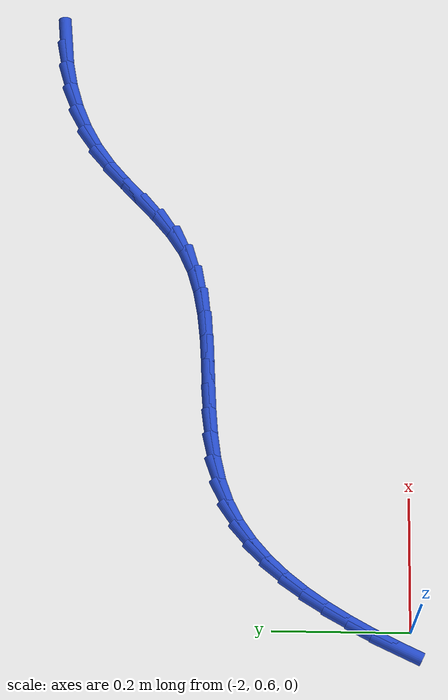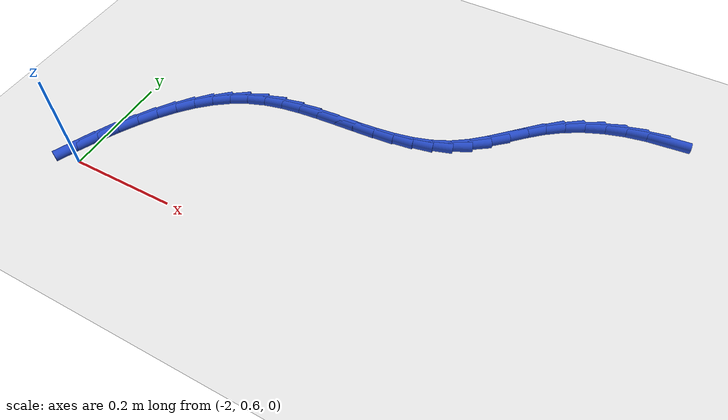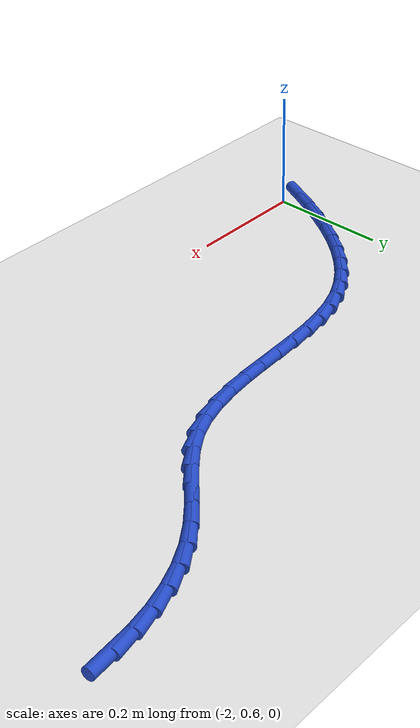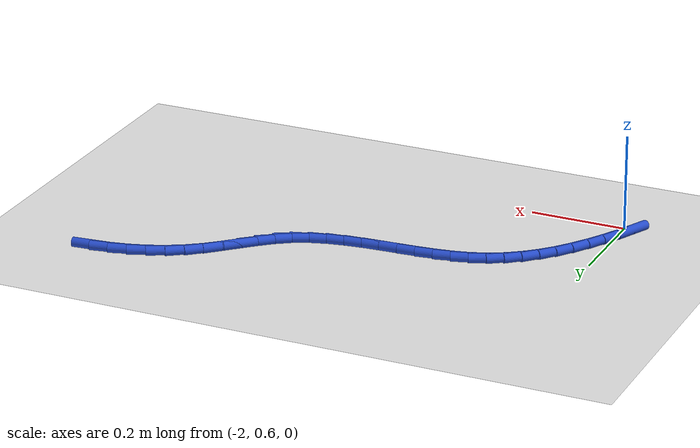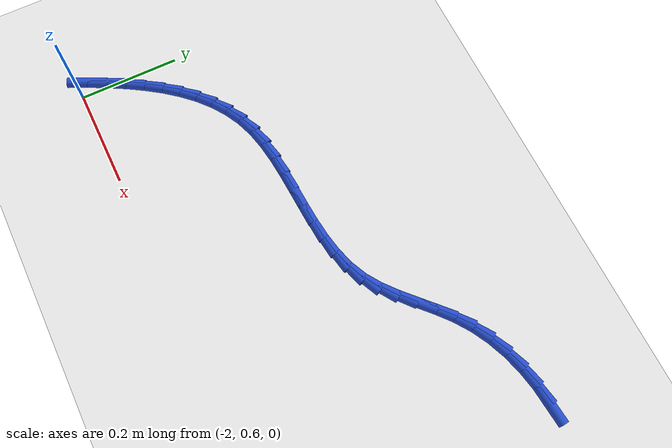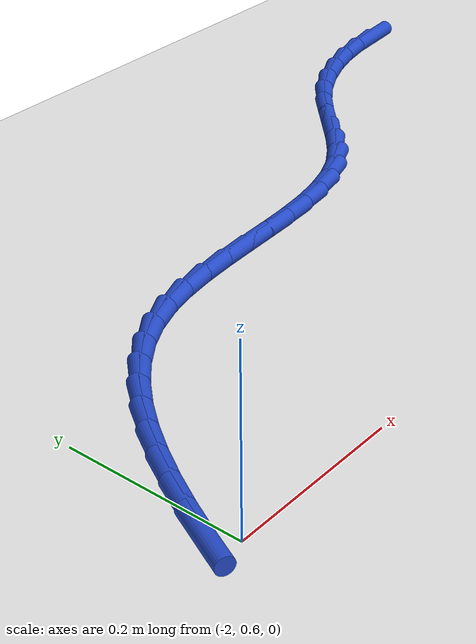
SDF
<sdf version="1.6">
 <world name="default">
  <model name="ground_plane">
   <static>1</static>
   <link name="link">
    <collision name="collision">
     <geometry><plane><normal>0 0 1</normal><size>100 100</size></plane></geometry>
     <surface><friction><ode><mu>100</mu><mu2>50</mu2></ode></friction></surface>
    </collision>
    <visual name="visual">
     <cast_shadows>0</cast_shadows>
     <geometry><plane><normal>0 0 1</normal><size>100 100</size></plane></geometry>
     <material>
      <script><uri>file://media/materials/scripts/gazebo.material</uri><name>Gazebo/WhiteGlow</name></script>
     </material>
    </visual>
   </link>
  </model>
  <model name="line">
   <link name="link_46">
    <pose>-1.06933907936797 1.1324772100005804 0.01 0 1.57 0.09374465614290557</pose>
    <collision name="collision">
     <geometry><cylinder><radius>0.01</radius><length>0.08</length></cylinder></geometry>
    </collision>
    <visual name="visual">
     <material>
      <script><name>Gazebo/Blue</name><uri>file://media/materials/scripts/gazebo.material</uri></script>
     </material>
     <geometry><cylinder><radius>0.01</radius><length>0.08</length></cylinder></geometry>
    </visual>
   </link>
   <link name="link_47">
    <pose>-1.1074220962420882 1.1288966357608752 0.01 0 1.57 0.18935990852704834</pose>
    <collision name="collision">
     <geometry><cylinder><radius>0.01</radius><length>0.08</length></cylinder></geometry>
    </collision>
    <visual name="visual">
     <material>
      <script><name>Gazebo/Blue</name><uri>file://media/materials/scripts/gazebo.material</uri></script>
     </material>
     <geometry><cylinder><radius>0.01</radius><length>0.08</length></cylinder></geometry>
    </visual>
   </link>
   <link name="link_48">
    <pose>-1.1450217208946392 1.1216904363577207 0.01 0 1.57 0.2876390914101385</pose>
    <collision name="collision">
     <geometry><cylinder><radius>0.01</radius><length>0.08</length></cylinder></geometry>
    </collision>
    <visual name="visual">
     <material>
      <script><name>Gazebo/Blue</name><uri>file://media/materials/scripts/gazebo.material</uri></script>
     </material>
     <geometry><cylinder><radius>0.01</radius><length>0.08</length></cylinder></geometry>
    </visual>
   </link>
   <link name="link_49">
    <pose>-1.1816251376712164 1.110861555475954 0.01 0 1.57 0.39055797815319265</pose>
    <collision name="collision">
     <geometry><cylinder><radius>0.01</radius><length>0.08</length></cylinder></geometry>
    </collision>
    <visual name="visual">
     <material>
      <script><name>Gazebo/Blue</name><uri>file://media/materials/scripts/gazebo.material</uri></script>
     </material>
     <geometry><cylinder><radius>0.01</radius><length>0.08</length></cylinder></geometry>
    </visual>
   </link>
   <link name="link_50">
    <pose>-1.216719530917414 1.096412936800411 0.01 0 1.57 0.4999486316795127</pose>
    <collision name="collision">
     <geometry><cylinder><radius>0.01</radius><length>0.08</length></cylinder></geometry>
    </collision>
    <visual name="visual">
     <material>
      <script><name>Gazebo/Blue</name><uri>file://media/materials/scripts/gazebo.material</uri></script>
     </material>
     <geometry><cylinder><radius>0.01</radius><length>0.08</length></cylinder></geometry>
    </visual>
   </link>
   <link name="link_51">
    <pose>-1.2497920849788244 1.0783475240159277 0.01 0 1.57 0.6164669470590998</pose>
    <collision name="collision">
     <geometry><cylinder><radius>0.01</radius><length>0.08</length></cylinder></geometry>
    </collision>
    <visual name="visual">
     <material>
      <script><name>Gazebo/Blue</name><uri>file://media/materials/scripts/gazebo.material</uri></script>
     </material>
     <geometry><cylinder><radius>0.01</radius><length>0.08</length></cylinder></geometry>
    </visual>
   </link>
   <link name="link_52">
    <pose>-1.2803528483238154 1.0566925132489717 0.01 0 1.57 0.7141509189044492</pose>
    <collision name="collision">
     <geometry><cylinder><radius>0.01</radius><length>0.08</length></cylinder></geometry>
    </collision>
    <visual name="visual">
     <material>
      <script><name>Gazebo/Blue</name><uri>file://media/materials/scripts/gazebo.material</uri></script>
     </material>
     <geometry><cylinder><radius>0.01</radius><length>0.08</length></cylinder></geometry>
    </visual>
   </link>
   <link name="link_53">
    <pose>-1.308601896143417 1.032207026052627 0.01 0 1.57 0.7622191861165557</pose>
    <collision name="collision">
     <geometry><cylinder><radius>0.01</radius><length>0.08</length></cylinder></geometry>
    </collision>
    <visual name="visual">
     <material>
      <script><name>Gazebo/Blue</name><uri>file://media/materials/scripts/gazebo.material</uri></script>
     </material>
     <geometry><cylinder><radius>0.01</radius><length>0.08</length></cylinder></geometry>
    </visual>
   </link>
   <link name="link_54">
    <pose>-1.3355351087915779 1.0064943107568707 0.01 0 1.57 0.7590784428358198</pose>
    <collision name="collision">
     <geometry><cylinder><radius>0.01</radius><length>0.08</length></cylinder></geometry>
    </collision>
    <visual name="visual">
     <material>
      <script><name>Gazebo/Blue</name><uri>file://media/materials/scripts/gazebo.material</uri></script>
     </material>
     <geometry><cylinder><radius>0.01</radius><length>0.08</length></cylinder></geometry>
    </visual>
   </link>
   <link name="link_55">
    <pose>-1.3621925214271149 0.9812044515943027 0.01 0 1.57 0.7025540852972219</pose>
    <collision name="collision">
     <geometry><cylinder><radius>0.01</radius><length>0.08</length></cylinder></geometry>
    </collision>
    <visual name="visual">
     <material>
      <script><name>Gazebo/Blue</name><uri>file://media/materials/scripts/gazebo.material</uri></script>
     </material>
     <geometry><cylinder><radius>0.01</radius><length>0.08</length></cylinder></geometry>
    </visual>
   </link>
   <link name="link_56">
    <pose>-1.3896141692088417 0.9579875327975215 0.01 0 1.57 0.5882410393197448</pose>
    <collision name="collision">
     <geometry><cylinder><radius>0.01</radius><length>0.08</length></cylinder></geometry>
    </collision>
    <visual name="visual">
     <material>
      <script><name>Gazebo/Blue</name><uri>file://media/materials/scripts/gazebo.material</uri></script>
     </material>
     <geometry><cylinder><radius>0.01</radius><length>0.08</length></cylinder></geometry>
    </visual>
   </link>
   <link name="link_57">
    <pose>-1.4188400366629559 0.9384935539610495 0.01 0 1.57 0.43142510996842376</pose>
    <collision name="collision">
     <geometry><cylinder><radius>0.01</radius><length>0.08</length></cylinder></geometry>
    </collision>
    <visual name="visual">
     <material>
      <script><name>Gazebo/Blue</name><uri>file://media/materials/scripts/gazebo.material</uri></script>
     </material>
     <geometry><cylinder><radius>0.01</radius><length>0.08</length></cylinder></geometry>
    </visual>
   </link>
   <link name="link_58">
    <pose>-1.4506088255871925 0.9238688869460902 0.01 0 1.57 0.2938625230957346</pose>
    <collision name="collision">
     <geometry><cylinder><radius>0.01</radius><length>0.08</length></cylinder></geometry>
    </collision>
    <visual name="visual">
     <material>
      <script><name>Gazebo/Blue</name><uri>file://media/materials/scripts/gazebo.material</uri></script>
     </material>
     <geometry><cylinder><radius>0.01</radius><length>0.08</length></cylinder></geometry>
    </visual>
   </link>
   <link name="link_59">
    <pose>-1.4846471410567434 0.9135680708928889 0.01 0 1.57 0.1896764735030521</pose>
    <collision name="collision">
     <geometry><cylinder><radius>0.01</radius><length>0.08</length></cylinder></geometry>
    </collision>
    <visual name="visual">
     <material>
      <script><name>Gazebo/Blue</name><uri>file://media/materials/scripts/gazebo.material</uri></script>
     </material>
     <geometry><cylinder><radius>0.01</radius><length>0.08</length></cylinder></geometry>
    </visual>
   </link>
   <link name="link_60">
    <pose>-1.5204692972306493 0.9066907769628599 0.01 0 1.57 0.11676343798065089</pose>
    <collision name="collision">
     <geometry><cylinder><radius>0.01</radius><length>0.08</length></cylinder></geometry>
    </collision>
    <visual name="visual">
     <material>
      <script><name>Gazebo/Blue</name><uri>file://media/materials/scripts/gazebo.material</uri></script>
     </material>
     <geometry><cylinder><radius>0.01</radius><length>0.08</length></cylinder></geometry>
    </visual>
   </link>
   <link name="link_61">
    <pose>-1.5575896082679486 0.9023366763174164 0.01 0 1.57 0.07187796368908876</pose>
    <collision name="collision">
     <geometry><cylinder><radius>0.01</radius><length>0.08</length></cylinder></geometry>
    </collision>
    <visual name="visual">
     <material>
      <script><name>Gazebo/Blue</name><uri>file://media/materials/scripts/gazebo.material</uri></script>
     </material>
     <geometry><cylinder><radius>0.01</radius><length>0.08</length></cylinder></geometry>
    </visual>
   </link>
   <link name="link_62">
    <pose>-1.5955223883276815 0.8996054401179723 0.01 0 1.57 0.05245376161355753</pose>
    <collision name="collision">
     <geometry><cylinder><radius>0.01</radius><length>0.08</length></cylinder></geometry>
    </collision>
    <visual name="visual">
     <material>
      <script><name>Gazebo/Blue</name><uri>file://media/materials/scripts/gazebo.material</uri></script>
     </material>
     <geometry><cylinder><radius>0.01</radius><length>0.08</length></cylinder></geometry>
    </visual>
   </link>
   <link name="link_63">
    <pose>-1.6337819515688872 0.8975967395259414 0.01 0 1.57 0.05732442063820508</pose>
    <collision name="collision">
     <geometry><cylinder><radius>0.01</radius><length>0.08</length></cylinder></geometry>
    </collision>
    <visual name="visual">
     <material>
      <script><name>Gazebo/Blue</name><uri>file://media/materials/scripts/gazebo.material</uri></script>
     </material>
     <geometry><cylinder><radius>0.01</radius><length>0.08</length></cylinder></geometry>
    </visual>
   </link>
   <link name="link_64">
    <pose>-1.671882612150605 0.8954102457027369 0.01 0 1.57 0.08693881976616938</pose>
    <collision name="collision">
     <geometry><cylinder><radius>0.01</radius><length>0.08</length></cylinder></geometry>
    </collision>
    <visual name="visual">
     <material>
      <script><name>Gazebo/Blue</name><uri>file://media/materials/scripts/gazebo.material</uri></script>
     </material>
     <geometry><cylinder><radius>0.01</radius><length>0.08</length></cylinder></geometry>
    </visual>
   </link>
   <link name="link_65">
    <pose>-1.7093386842318747 0.892145629809773 0.01 0 1.57 0.1433445897536626</pose>
    <collision name="collision">
     <geometry><cylinder><radius>0.01</radius><length>0.08</length></cylinder></geometry>
    </collision>
    <visual name="visual">
     <material>
      <script><name>Gazebo/Blue</name><uri>file://media/materials/scripts/gazebo.material</uri></script>
     </material>
     <geometry><cylinder><radius>0.01</radius><length>0.08</length></cylinder></geometry>
    </visual>
   </link>
   <link name="link_66">
    <pose>-1.7456644819717355 0.8869025630084632 0.01 0 1.57 0.22985710713564497</pose>
    <collision name="collision">
     <geometry><cylinder><radius>0.01</radius><length>0.08</length></cylinder></geometry>
    </collision>
    <visual name="visual">
     <material>
      <script><name>Gazebo/Blue</name><uri>file://media/materials/scripts/gazebo.material</uri></script>
     </material>
     <geometry><cylinder><radius>0.01</radius><length>0.08</length></cylinder></geometry>
    </visual>
   </link>
   <link name="link_67">
    <pose>-1.7803743195292268 0.8787807164602208 0.01 0 1.57 0.34924841786862143</pose>
    <collision name="collision">
     <geometry><cylinder><radius>0.01</radius><length>0.08</length></cylinder></geometry>
    </collision>
    <visual name="visual">
     <material>
      <script><name>Gazebo/Blue</name><uri>file://media/materials/scripts/gazebo.material</uri></script>
     </material>
     <geometry><cylinder><radius>0.01</radius><length>0.08</length></cylinder></geometry>
    </visual>
   </link>
   <link name="link_68">
    <pose>-1.8129935747464805 0.8669015339209604 0.01 0 1.57 0.4834277409125877</pose>
    <collision name="collision">
     <geometry><cylinder><radius>0.01</radius><length>0.08</length></cylinder></geometry>
    </collision>
    <visual name="visual">
     <material>
      <script><name>Gazebo/Blue</name><uri>file://media/materials/scripts/gazebo.material</uri></script>
     </material>
     <geometry><cylinder><radius>0.01</radius><length>0.08</length></cylinder></geometry>
    </visual>
   </link>
   <link name="link_69">
    <pose>-1.843343439118624 0.8509686007951692 0.01 0 1.57 0.6082505761260839</pose>
    <collision name="collision">
     <geometry><cylinder><radius>0.01</radius><length>0.08</length></cylinder></geometry>
    </collision>
    <visual name="visual">
     <material>
      <script><name>Gazebo/Blue</name><uri>file://media/materials/scripts/gazebo.material</uri></script>
     </material>
     <geometry><cylinder><radius>0.01</radius><length>0.08</length></cylinder></geometry>
    </visual>
   </link>
   <link name="link_70">
    <pose>-1.871565894211452 0.8313167960692662 0.01 0 1.57 0.7195353318911051</pose>
    <collision name="collision">
     <geometry><cylinder><radius>0.01</radius><length>0.08</length></cylinder></geometry>
    </collision>
    <visual name="visual">
     <material>
      <script><name>Gazebo/Blue</name><uri>file://media/materials/scripts/gazebo.material</uri></script>
     </material>
     <geometry><cylinder><radius>0.01</radius><length>0.08</length></cylinder></geometry>
    </visual>
   </link>
   <link name="link_71">
    <pose>-1.8978189908481777 0.8083126219624354 0.01 0 1.57 0.8160884264763613</pose>
    <collision name="collision">
     <geometry><cylinder><radius>0.01</radius><length>0.08</length></cylinder></geometry>
    </collision>
    <visual name="visual">
     <material>
      <script><name>Gazebo/Blue</name><uri>file://media/materials/scripts/gazebo.material</uri></script>
     </material>
     <geometry><cylinder><radius>0.01</radius><length>0.08</length></cylinder></geometry>
    </visual>
   </link>
   <link name="link_72">
    <pose>-1.9222607798520124 0.7823225806938614 0.01 0 1.57 0.8981687948430194</pose>
    <collision name="collision">
     <geometry><cylinder><radius>0.01</radius><length>0.08</length></cylinder></geometry>
    </collision>
    <visual name="visual">
     <material>
      <script><name>Gazebo/Blue</name><uri>file://media/materials/scripts/gazebo.material</uri></script>
     </material>
     <geometry><cylinder><radius>0.01</radius><length>0.08</length></cylinder></geometry>
    </visual>
   </link>
   <link name="link_73">
    <pose>-1.9450493120461685 0.7537131744827295 0.01 0 1.57 0.9668493351341519</pose>
    <collision name="collision">
     <geometry><cylinder><radius>0.01</radius><length>0.08</length></cylinder></geometry>
    </collision>
    <visual name="visual">
     <material>
      <script><name>Gazebo/Blue</name><uri>file://media/materials/scripts/gazebo.material</uri></script>
     </material>
     <geometry><cylinder><radius>0.01</radius><length>0.08</length></cylinder></geometry>
    </visual>
   </link>
   <link name="link_74">
    <pose>-1.966342638253858 0.722850905548223 0.01 0 1.57 1.0235125029237273</pose>
    <collision name="collision">
     <geometry><cylinder><radius>0.01</radius><length>0.08</length></cylinder></geometry>
    </collision>
    <visual name="visual">
     <material>
      <script><name>Gazebo/Blue</name><uri>file://media/materials/scripts/gazebo.material</uri></script>
     </material>
     <geometry><cylinder><radius>0.01</radius><length>0.08</length></cylinder></geometry>
    </visual>
   </link>
   <link name="link_75">
    <pose>-1.986298809298294 0.6901022761095273 0.01 0 1.57 1.0695362552401269</pose>
    <collision name="collision">
     <geometry><cylinder><radius>0.01</radius><length>0.08</length></cylinder></geometry>
    </collision>
    <visual name="visual">
     <material>
      <script><name>Gazebo/Blue</name><uri>file://media/materials/scripts/gazebo.material</uri></script>
     </material>
     <geometry><cylinder><radius>0.01</radius><length>0.08</length></cylinder></geometry>
    </visual>
   </link>
   <link name="link_76">
    <pose>-2.005075876002688 0.6558337883858272 0.01 0 1.57 1.106130852567896</pose>
    <collision name="collision">
     <geometry><cylinder><radius>0.01</radius><length>0.08</length></cylinder></geometry>
    </collision>
    <visual name="visual">
     <material>
      <script><name>Gazebo/Blue</name><uri>file://media/materials/scripts/gazebo.material</uri></script>
     </material>
     <geometry><cylinder><radius>0.01</radius><length>0.08</length></cylinder></geometry>
    </visual>
   </link>
   <link name="link_77">
    <pose>-2.0228318891902513 0.6204119445963066 0.01 0 1.57 1.1342685438763886</pose>
    <collision name="collision">
     <geometry><cylinder><radius>0.01</radius><length>0.08</length></cylinder></geometry>
    </collision>
    <visual name="visual">
     <material>
      <script><name>Gazebo/Blue</name><uri>file://media/materials/scripts/gazebo.material</uri></script>
     </material>
     <geometry><cylinder><radius>0.01</radius><length>0.08</length></cylinder></geometry>
    </visual>
   </link>
  </model>
 </world>
</sdf>
